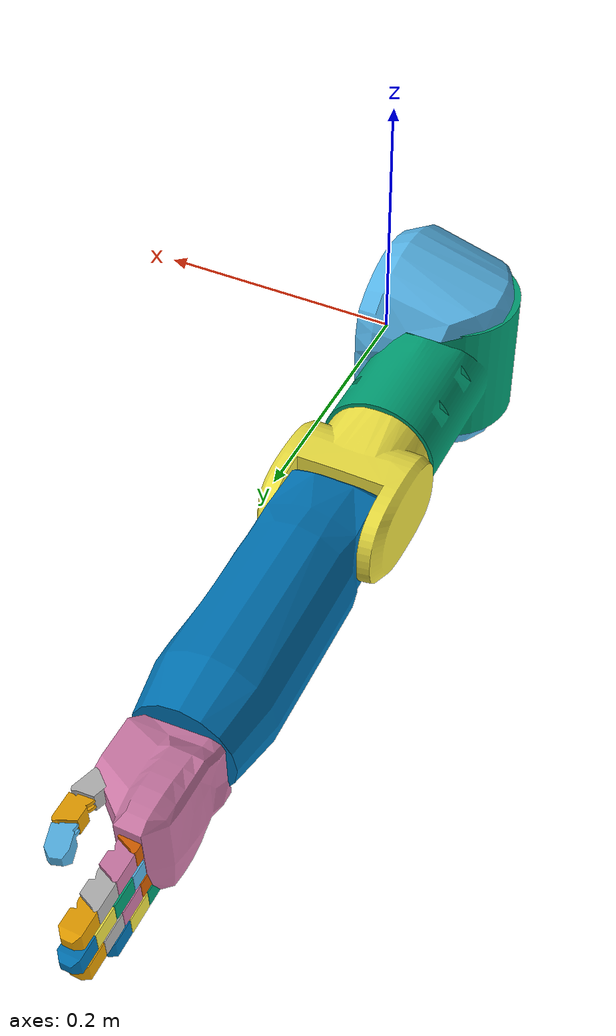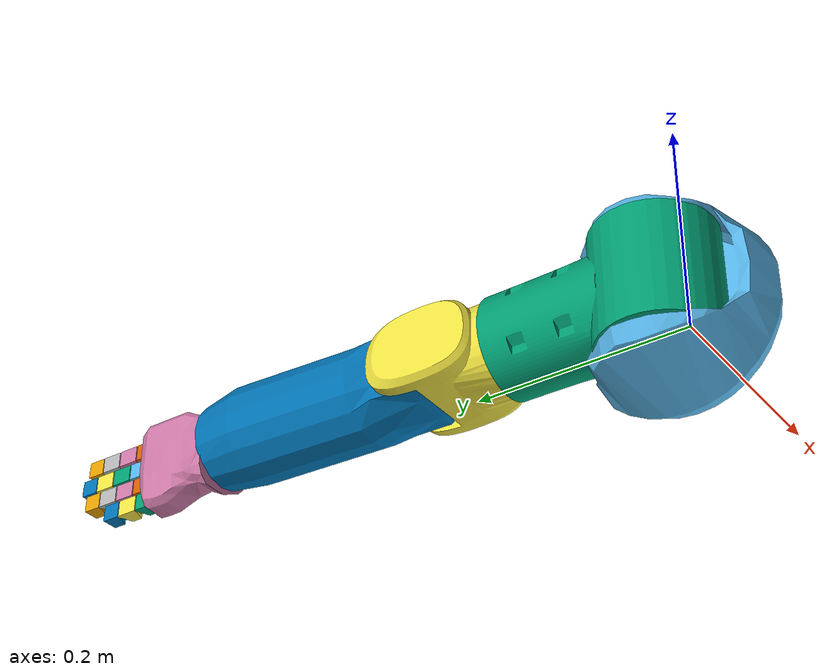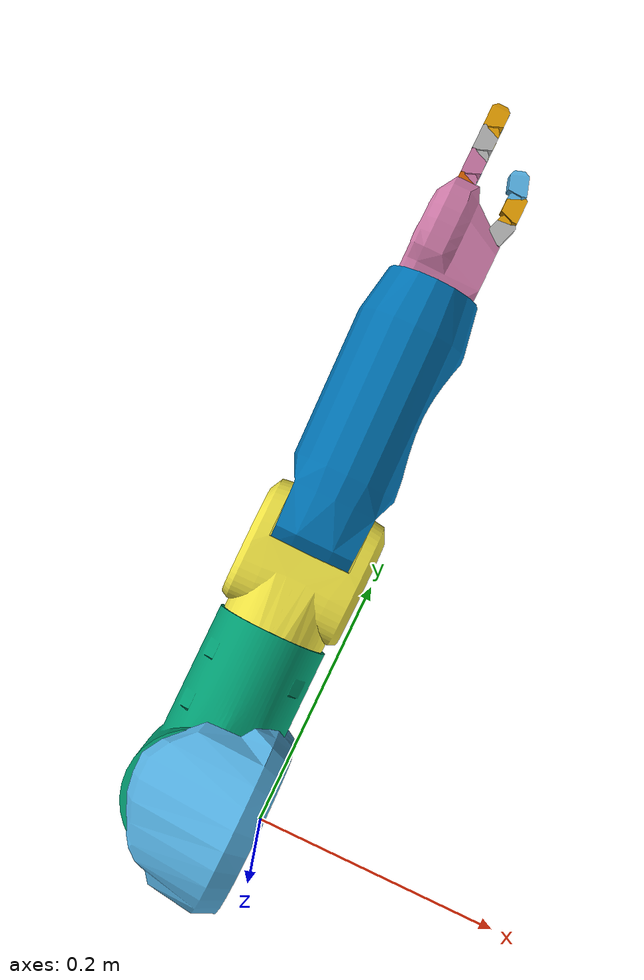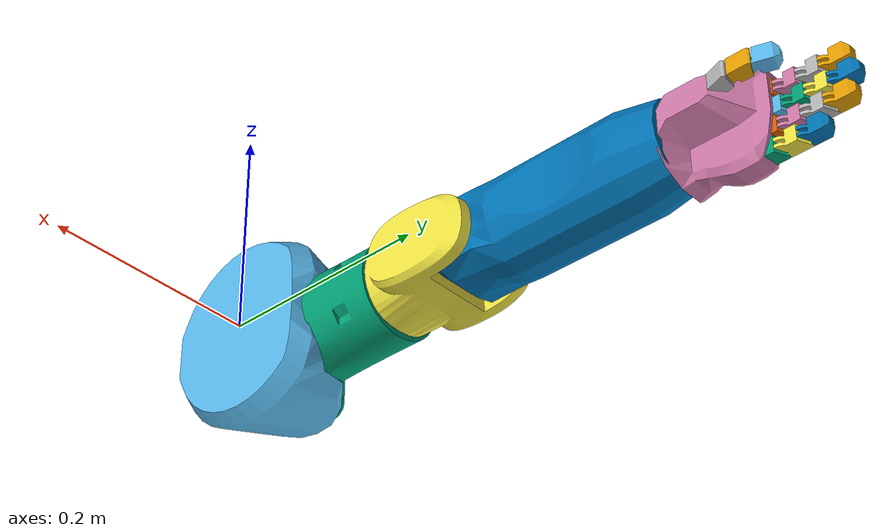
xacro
<?xml version="1.0"?>
<robot name="ar600_hand" xmlns:xacro="http://www.ros.org/wiki/xacro">
       <xacro:include filename="$(find ar600_description)/gazebo/gazebo.urdf.xacro" />
       <xacro:include filename="$(find ar600_description)/urdf/hand/hand.urdf.xacro" />
       <xacro:include filename="$(find ar600_description)/urdf/palm/palm.urdf.xacro" />

	<link name="base_link">
		<inertial>
			<mass value="10"/>
			<inertia ixx="1.0" ixy="0.0" ixz="0.0" iyy="1.0" iyz="0.0" izz="1.0"/>
		</inertial>
	</link>

	<xacro:ar600_hand_macro side="left" parent="base" reflect="1">
		<origin xyz="0 0 0" rpy="0 0 1.57"/>
	</xacro:ar600_hand_macro>

	<xacro:ar600_palm_macro side="left" otherside="right" parent="left_hand_effector" reflect="1">
		<origin xyz="0 0 0" rpy="0 0 -1.57"/>
	</xacro:ar600_palm_macro>

</robot>

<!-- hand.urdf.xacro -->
<robot xmlns:xacro="http://ros.org/wiki/xacro">

	<xacro:include filename="$(find ar600_description)/urdf/hand/hand.gazebo.xacro" />
  	<xacro:include filename="$(find ar600_description)/urdf/hand/hand.transmission.xacro" />

	<xacro:macro name="ar600_hand_macro" params="parent side reflect *origin">

		<link name="${side}_shoulder">
			<visual>
				<geometry>
					<mesh filename="package://ar600_description/meshes/${side}_shoulder_low.dae"/>
				</geometry>
			</visual>
			<inertial>
				<mass value="1"/>
				<inertia
					 ixx="1.0" ixy="0.0" ixz="0.0"
					 		   iyy="1.0" iyz="0.0"
					 		   			 izz="1.0"/>
			</inertial>
		</link>

		<link name="${side}_upper_forearm">
			<visual>
				<geometry>
					<mesh filename="package://ar600_description/meshes/${side}_upper_arm_high.dae"/>
				</geometry>
			</visual>
			<inertial>
				<mass value="4"/>
				<inertia
					 ixx="1.0" ixy="0.0" ixz="0.0"
					 	       iyy="1.0" iyz="0.0"
					 	       			 izz="1.0"/>
			</inertial>

			<collision>
				<geometry>
					<mesh filename="package://ar600_description/meshes/phys_model/forearm.stl"/>
				</geometry>
			</collision>
		</link>

		<link name="${side}_elbow">
			<visual>
				<geometry>
					<mesh filename="package://ar600_description/meshes/elbow_low.dae"/>
				</geometry>
			</visual>
			<inertial>
				<mass value="1"/>
				<inertia
					 ixx="1.0" ixy="0.0" ixz="0.0"
					 		   iyy="1.0" iyz="0.0"
					 		             izz="1.0"/>
			</inertial>

			<collision>
				<geometry>
					<mesh filename="package://ar600_description/meshes/phys_model/elbow.stl"/>
				</geometry>
			</collision>
		</link>

		<link name="${side}_arm_link">
			<visual>
				<geometry>
					<mesh filename="package://ar600_description/meshes/${side}_arm.dae"/>
				</geometry>
			</visual>
			<inertial>
				<mass value="3"/>
				<inertia
					 ixx="1.0" ixy="0.0" ixz="0.0"
					 		   iyy="1.0" iyz="0.0"
					 		             izz="1.0"/>
			</inertial>
			<collision>
				<geometry>
					<mesh filename="package://ar600_description/meshes/phys_model/arm.stl"/>
				</geometry>
			</collision>
		</link>

		<link name="${side}_hand_effector_link">
			<inertial>
				<mass value=".1"/>
				<inertia
					 ixx="1.0" ixy="0.0" ixz="0.0"
					 		   iyy="1.0" iyz="0.0"
					 		   			 izz="1.0"/>
			</inertial>
		</link>

		<joint name="torso_${side}_shoulder" type="revolute">
			<parent link="${parent}_link"/>
			<child link="${side}_shoulder"/>
			<xacro:insert_block name="origin"/>
			<limit effort="1000.0" lower="0" upper="3.14" velocity="0.5"/>
			<axis xyz="0 -1 0"/>
			<dynamics damping="0.7" />
		</joint>

		<joint name="${side}_upper_forearm_shoulder" type="revolute">
			<parent link="${side}_shoulder"/>
			<child link="${side}_upper_forearm"/>
			<origin xyz="0 ${.055*reflect} 0" rpy="-1.57 0 1.57"/>
			<limit effort="1000.0" lower="0.0" upper="1.57" velocity="0.5"/>
			<axis xyz="0 ${-1 * reflect} 0"/>
			<dynamics damping="0.7" />
		</joint>

		<joint name="${side}_upper_forearm_${side}_lower_forearm" type="revolute">
			<parent link="${side}_upper_forearm"/>
			<child link="${side}_elbow"/>
			<origin xyz="0 0 -0.12" rpy="0 0 0"/>
			<limit effort="1000.0" lower="${-1.57}" upper="${1.57}" velocity="0.5"/>
			<axis xyz="0 0 ${reflect}"/>
			<dynamics damping="0.7" />
		</joint>

		<joint name="${side}_lower_forearm_arm" type="revolute">
			<parent link="${side}_elbow"/>
			<child link="${side}_arm_link"/>
			<origin xyz="0 0 -0.1" rpy="0 0 0"/>
			<limit effort="1000.0" lower="0" upper="1.57" velocity="0.5"/>
			<axis xyz="-1 0 0"/>
			<dynamics damping="0.7" />
		</joint>

		<joint name="${side}_lower_arm_effector" type="revolute">
			<parent link="${side}_arm_link"/>
			<child link="${side}_hand_effector_link"/>
			<limit effort="1000.0" lower="-0.707" upper="0.707" velocity="0.5"/>
			<origin xyz="0.005 0.005 -0.21" rpy="0 0 0"/>
			<axis xyz="0 0 -1"/>
			<dynamics damping="0.7" />
		</joint>
		<xacro:shoulder_transmission_macro side="${side}"/>
		<xacro:upper_forearm_shoulder_transmission_macro side="${side}"/>
		<xacro:upper_forearm_lower_forearm_transmission_macro side="${side}"/>
		<xacro:elbow_transmission_macro side="${side}"/>
		<xacro:arm_transmission_macro side="${side}"/>
	</xacro:macro>
</robot>

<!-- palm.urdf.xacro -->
<robot xmlns:xacro="http://ros.org/wiki/xacro">

	<xacro:include filename="$(find ar600_description)/urdf/palm/finger.urdf.xacro" />

	<xacro:macro name="ar600_palm_macro" params="parent side otherside reflect *origin">
		<link name="${side}_palm">
			<visual>
				<geometry>
					<mesh filename="package://ar600_description/meshes/${side}_palm_vis.dae"/>
				</geometry>
			</visual>
			<inertial>
				<mass value="0.1"/>
				<inertia
					 ixx="1.0" ixy="0.0" ixz="0.0"
					           iyy="1.0" iyz="0.0"
					                     izz="1.0"/>
			</inertial>
			<collision>
				<geometry>
					<mesh filename="package://ar600_description/meshes/${side}_palm.stl"/>
				</geometry>
			</collision>
		</link>

		<link name="${side}bigfingerseg1">
			<visual>
				<geometry>
					<mesh filename="package://ar600_description/meshes/finger_segment.dae"/>
				</geometry>
			</visual>
			<inertial>
				<mass value="0.05"/>
				<inertia
					 ixx="1.0" ixy="0.0" ixz="0.0"
					           iyy="1.0" iyz="0.0"
					                     izz="1.0"/>
			</inertial>
			<collision>
				<geometry>
					<mesh filename="package://ar600_description/meshes/finger_segment.stl"/>
				</geometry>
			</collision>
		</link>

		<link name="${side}bigfingerseg2">
			<visual>
				<geometry>
					<mesh filename="package://ar600_description/meshes/finger_segment.dae"/>
				</geometry>
			</visual>
			<inertial>
				<mass value="0.05"/>
				<inertia
				 	 ixx="1.0" ixy="0.0" ixz="0.0"
				           	   iyy="1.0" iyz="0.0"
				                         izz="1.0"/>
			</inertial>
			<collision>
				<geometry>
					<mesh filename="package://ar600_description/meshes/finger_segment.stl"/>
				</geometry>
			</collision>
		</link>

		<link name="${side}bigfingerseg3">
			<visual>
				<geometry>
					<mesh filename="package://ar600_description/meshes/finger_tip.dae"/>
				</geometry>
			</visual>
			<inertial>
				<mass value="0.05"/>
				<inertia
					 ixx="1.0" ixy="0.0" ixz="0.0"
				               iyy="1.0" iyz="0.0"
				                         izz="1.0"/>
				</inertial>
			<collision>
				<geometry>
					<mesh filename="package://ar600_description/meshes/finger_segment.stl"/>
				</geometry>
			</collision>
		</link>

		<joint name="arm_${side}_palm" type="revolute">
				<parent link="${parent}_link"/>
				<child link="${side}_palm"/>
				<xacro:insert_block name="origin"/>
				<limit effort="1000.0" lower="-0.707" upper="0.707" velocity="0.5"/>
				<axis xyz="0 0 ${-reflect}"/>
				<dynamics damping="0.7"/>
		</joint>

		<joint name="${side}_palm_thumb1" type="fixed">
			<parent link="${side}_palm"/>
			<child link="${side}bigfingerseg1"/>
			<origin xyz="${0.022*reflect} -0.025 -.045" rpy="0.314 0 3.14"/>
			<dynamics damping="0.7"/>
		</joint>

		<joint name="${side}_thumb1_thumb2" type="revolute">
			<parent link="${side}bigfingerseg1"/>
			<child link="${side}bigfingerseg2"/>
			<origin xyz="0 0 -0.02" rpy="-0.314 0 0"/>
			<limit effort="1000.0" lower="0" upper="0.707" velocity="0.5"/>
			<axis xyz="${-1*reflect} 0 0"/>
			<dynamics damping="0.7"/>
		</joint>

		<joint name="${side}_thumb2_thumb3" type="revolute">
			<parent link="${side}bigfingerseg2"/>
			<child link="${side}bigfingerseg3"/>
			<origin xyz="0 0 -0.02" rpy="-0.314 0 0"/>
			<limit effort="1000.0" lower="0" upper="0.707" velocity="0.5"/>
			<axis xyz="${-1*reflect} 0 0"/>
			<dynamics damping="0.7"/>
		</joint>

		<link name="${side}f41">
			<visual>
				<geometry>
					<mesh filename="package://ar600_description/meshes/finger_segment.dae"/>
				</geometry>
			</visual>
			<inertial>
				<mass value="0.05"/>
				<inertia
				 	 ixx="1.0" ixy="0.0" ixz="0.0"
					           iyy="1.0" iyz="0.0"
					                     izz="1.0"/>
			</inertial>
			<collision>
				<geometry>
					<mesh filename="package://ar600_description/meshes/finger_segment.stl"/>
				</geometry>
			</collision>
		</link>

		<link name="${side}f42">
			<visual>
				<geometry>
					<mesh filename="package://ar600_description/meshes/finger_segment.dae"/>
				</geometry>
			</visual>
			<inertial>
				<mass value="0.05"/>
				<inertia
				 	 ixx="1.0" ixy="0.0" ixz="0.0"
				               iyy="1.0" iyz="0.0"
				                         izz="1.0"/>
			</inertial>
			<collision>
				<geometry>
					<mesh filename="package://ar600_description/meshes/finger_segment.stl"/>
				</geometry>
			</collision>
		</link>

		<link name="${side}f43">
			<visual>
				<geometry>
					<mesh filename="package://ar600_description/meshes/finger_tip.dae"/>
				</geometry>
			</visual>
			<inertial>
				<mass value="0.05"/>
				<inertia
				 	 ixx="1.0" ixy="0.0" ixz="0.0"
				           	   iyy="1.0" iyz="0.0"
				                         izz="1.0"/>
			</inertial>
			<collision>
				<geometry>
					<mesh filename="package://ar600_description/meshes/finger_segment.stl"/>
				</geometry>
			</collision>
		</link>

		<joint name="${side}_palm_f4" type="fixed">
			<parent link="${side}_palm"/>
			<child link="${side}f41"/>
			<origin xyz="${-.03*reflect} 0.01 -0.0575" rpy="0 0 0"/>
			<dynamics damping="0.7"/>
		</joint>

		<joint name="${side}_f41_f42" type="revolute">
			<parent link="${side}f41"/>
			<child link="${side}f42"/>
			<origin xyz="0 0 -0.02" rpy="0 0 0"/>
			<limit effort="1000.0" lower="0" upper="0.707" velocity="0.5"/>
			<axis xyz="${-1*reflect} 0 0"/>
			<dynamics damping="0.7"/>
		</joint>

		<joint name="${side}_f42_f43" type="revolute">
			<parent link="${side}f42"/>
			<child link="${side}f43"/>
			<origin xyz="0 0 -0.02" rpy="0 0 0"/>
			<limit effort="1000.0" lower="0" upper="0.707" velocity="0.5"/>
			<axis xyz="${-1*reflect} 0 0"/>
			<dynamics damping="0.7"/>
		</joint>

		<xacro:ar600_palm_finger_macro parent="${side}_palm" side="${side}" otherside="${otherside}" reflect="${reflect}" index="1">
			<origin xyz="${0.022*reflect} 0.01 -0.0625" rpy="0 0 0"/>
		</xacro:ar600_palm_finger_macro>

		<xacro:ar600_palm_finger_macro parent="${side}_palm" side="${side}" otherside="${otherside}" reflect="${reflect}" index="2">
			<origin xyz="${.004*reflect} 0.01 -0.068" rpy="0 0 0"/>
		</xacro:ar600_palm_finger_macro>

		<xacro:ar600_palm_finger_macro parent="${side}_palm" side="${side}" otherside="${otherside}" reflect="${reflect}" index="3">
			<origin xyz="${-.013*reflect} 0.01 -0.0625" rpy="0 0 0"/>
		</xacro:ar600_palm_finger_macro>
	</xacro:macro>

</robot>

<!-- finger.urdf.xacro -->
<robot xmlns:xacro="http://ros.org/wiki/xacro">

	<xacro:macro name="ar600_palm_finger_macro" params="parent side otherside reflect index *origin">
		<link name="${side}f${index}1">
			<visual>
				<geometry>
					<mesh filename="package://ar600_description/meshes/finger_segment.dae"/>
				</geometry>
			</visual>
			<inertial>
				<mass value="0.05"/>
				<inertia
					 ixx="1.0" ixy="0.0" ixz="0.0"
					           iyy="1.0" iyz="0.0"
					                     izz="1.0"/>
			</inertial>
			<collision>
				<geometry>
					<mesh filename="package://ar600_description/meshes/finger_segment.stl"/>
				</geometry>
			</collision>
		</link>

		<link name="${side}f${index}2">
			<visual>
				<geometry>
					<mesh filename="package://ar600_description/meshes/finger_segment.dae"/>
				</geometry>
			</visual>
			<inertial>
				<mass value="0.05"/>
				<inertia
					 ixx="1.0" ixy="0.0" ixz="0.0"
					           iyy="1.0" iyz="0.0"
					                     izz="1.0"/>
				</inertial>
		    <collision>
				<geometry>
					<mesh filename="package://ar600_description/meshes/finger_segment.stl"/>
				</geometry>
			</collision>
		</link>

		<link name="${side}f${index}3">
			<visual>
				<geometry>
					<mesh filename="package://ar600_description/meshes/finger_segment.dae"/>
				</geometry>
			</visual>
			<inertial>
				<mass value="0.05"/>
				<inertia
					 ixx="1.0" ixy="0.0" ixz="0.0"
					           iyy="1.0" iyz="0.0"
					                     izz="1.0"/>
			</inertial>
			<collision>
				<geometry>
					<mesh filename="package://ar600_description/meshes/finger_segment.stl"/>
				</geometry>
			</collision>
		</link>

		<link name="${side}f${index}4">
			<visual>
				<geometry>
					<mesh filename="package://ar600_description/meshes/finger_tip.dae"/>
				</geometry>
			</visual>
			<inertial>
				<mass value="0.05"/>
				<inertia
					 ixx="1.0" ixy="0.0" ixz="0.0"
					           iyy="1.0" iyz="0.0"
					                     izz="1.0"/>
				</inertial>
			<collision>
				<geometry>
					<mesh filename="package://ar600_description/meshes/finger_segment.stl"/>
				</geometry>
			</collision>
		</link>

		<joint name="${side}_palm_f${index}" type="fixed">
			<parent link="${parent}"/>
			<child link="${side}f${index}1"/>
			<xacro:insert_block name="origin"/>
		</joint>

		<joint name="${side}_f${index}1_f${index}2" type="revolute">
			<parent link="${side}f${index}1"/>
			<child link="${side}f${index}2"/>
			<origin xyz="0 0 -0.02" rpy="0 0 0"/>
			<limit effort="1000.0" lower="0" upper="0.707" velocity="0.5"/>
			<axis xyz="${-1*reflect} 0 0"/>
		</joint>

		<joint name="${side}_f${index}2_f${index}3" type="revolute">
			<parent link="${side}f${index}2"/>
			<child link="${side}f${index}3"/>
			<origin xyz="0 0 -0.02" rpy="0 0 0"/>
			<limit effort="1000.0" lower="0" upper="0.707" velocity="0.5"/>
			<axis xyz="${-1*reflect} 0 0"/>
		</joint>

		<joint name="${side}_f${index}3_f${index}4" type="revolute">
			<parent link="${side}f${index}3"/>
			<child link="${side}f${index}4"/>
			<origin xyz="0 0 -0.02" rpy="0 0 0"/>
			<limit effort="1000.0" lower="0" upper="0.707" velocity="0.5"/>
			<axis xyz="${-1*reflect} 0 0"/>
		</joint>

	</xacro:macro>
</robot>
